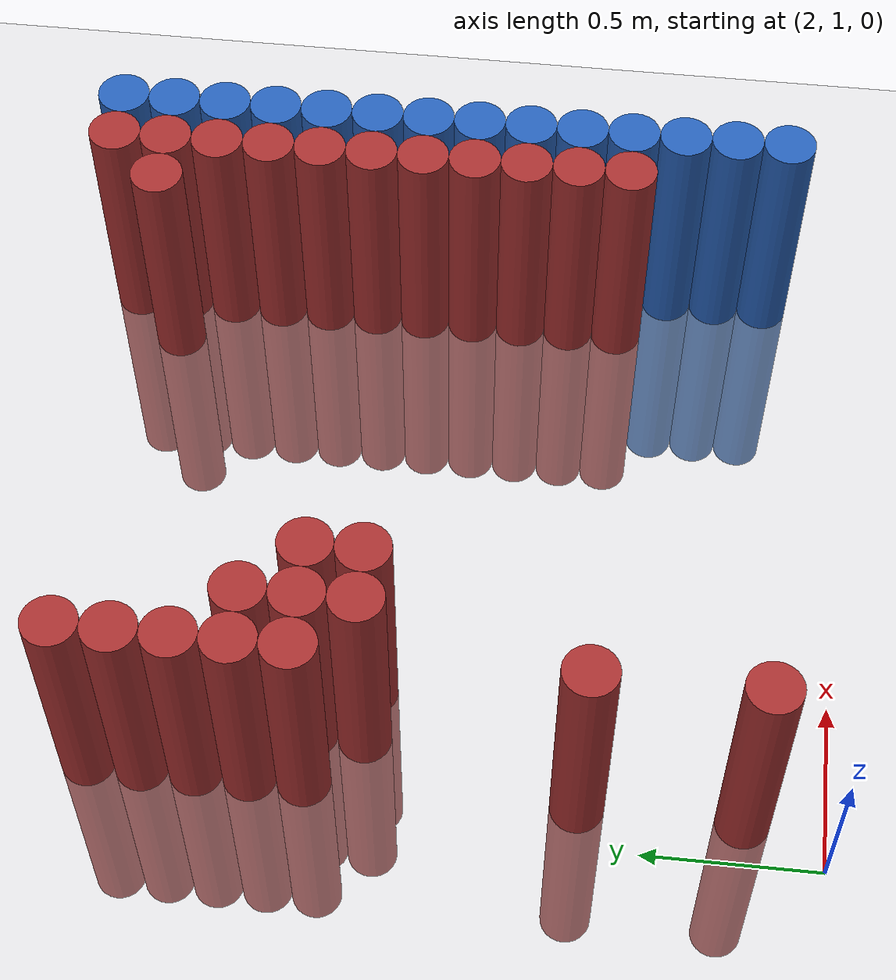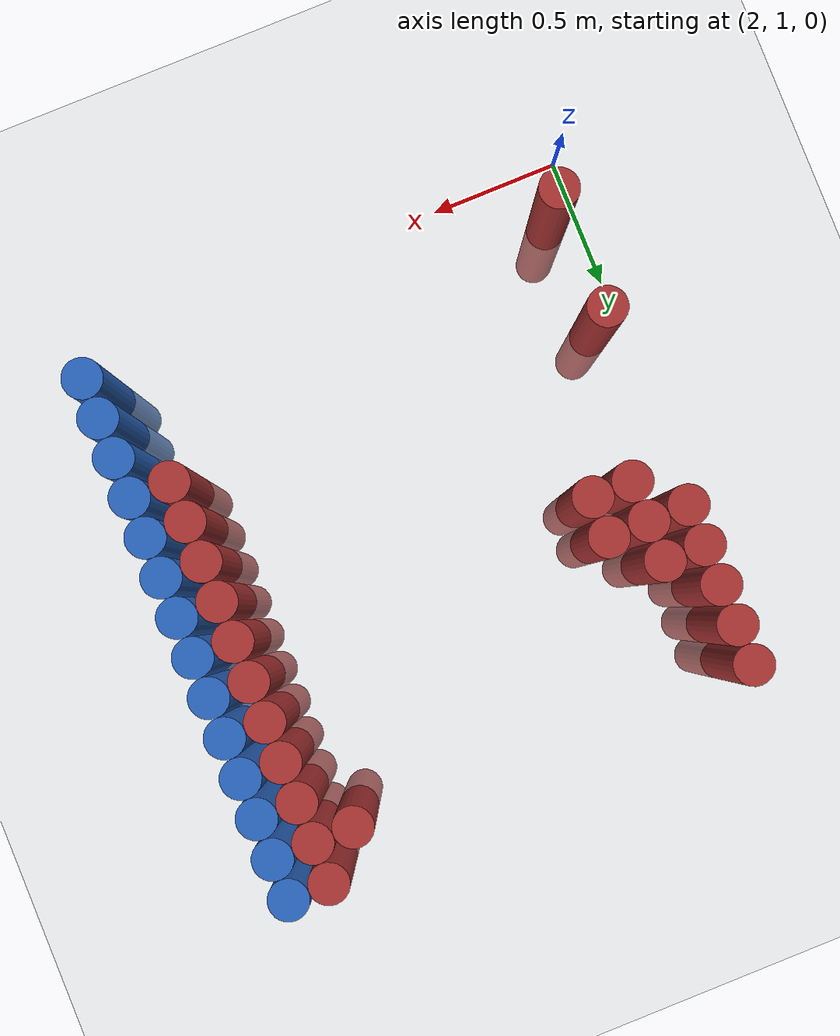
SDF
<sdf version="1.6">
 <world name="default">
  <model name="ground_plane">
   <static>1</static>
   <link name="link">
    <collision name="collision">
     <geometry><plane><normal>0 0 1</normal><size>100 100</size></plane></geometry>
     <surface><friction><ode><mu>100</mu><mu2>50</mu2></ode></friction></surface>
    </collision>
    <visual name="visual">
     <cast_shadows>0</cast_shadows>
     <geometry><plane><normal>0 0 1</normal><size>100 100</size></plane></geometry>
     <material>
      <script><uri>file://media/materials/scripts/gazebo.material</uri><name>Gazebo/Grey</name></script>
     </material>
    </visual>
   </link>
  </model>
  <model name="unit_cylinder_132">
   <static>1</static>
   <pose>3.925000 1.375000 0.000000 0.000000 0.000000 0.000000</pose>
   <link name="link">
    <inertial>
     <mass>1</mass>
     <inertia><ixx>0.145833</ixx><ixy>0</ixy><ixz>0</ixz><iyy>0.145833</iyy><iyz>0</iyz><izz>0.125</izz></inertia>
    </inertial>
    <collision name="collision">
     <geometry><cylinder><radius>0.075000</radius><length>1.5</length></cylinder></geometry>
    </collision>
    <visual name="visual">
     <geometry><cylinder><radius>0.075000</radius><length>1.5</length></cylinder></geometry>
     <material>
      <ambient>0.152000 0.379000 0.720000 1</ambient>
      <diffuse>0.152000 0.379000 0.720000 1</diffuse>
     </material>
     <material>
      <script><name>Gazebo/Grey</name><uri>file://media/materials/scripts/gazebo.material</uri></script>
     </material>
    </visual>
   </link>
  </model>
  <model name="unit_cylinder_134">
   <static>1</static>
   <pose>3.925000 1.525000 0.000000 0.000000 0.000000 0.000000</pose>
   <link name="link">
    <inertial>
     <mass>1</mass>
     <inertia><ixx>0.145833</ixx><ixy>0</ixy><ixz>0</ixz><iyy>0.145833</iyy><iyz>0</iyz><izz>0.125</izz></inertia>
    </inertial>
    <collision name="collision">
     <geometry><cylinder><radius>0.075000</radius><length>1.5</length></cylinder></geometry>
    </collision>
    <visual name="visual">
     <geometry><cylinder><radius>0.075000</radius><length>1.5</length></cylinder></geometry>
     <material>
      <ambient>0.152000 0.379000 0.720000 1</ambient>
      <diffuse>0.152000 0.379000 0.720000 1</diffuse>
     </material>
     <material>
      <script><name>Gazebo/Grey</name><uri>file://media/materials/scripts/gazebo.material</uri></script>
     </material>
    </visual>
   </link>
  </model>
  <model name="unit_cylinder_136">
   <static>1</static>
   <pose>3.925000 1.675000 0.000000 0.000000 0.000000 0.000000</pose>
   <link name="link">
    <inertial>
     <mass>1</mass>
     <inertia><ixx>0.145833</ixx><ixy>0</ixy><ixz>0</ixz><iyy>0.145833</iyy><iyz>0</iyz><izz>0.125</izz></inertia>
    </inertial>
    <collision name="collision">
     <geometry><cylinder><radius>0.075000</radius><length>1.5</length></cylinder></geometry>
    </collision>
    <visual name="visual">
     <geometry><cylinder><radius>0.075000</radius><length>1.5</length></cylinder></geometry>
     <material>
      <ambient>0.152000 0.379000 0.720000 1</ambient>
      <diffuse>0.152000 0.379000 0.720000 1</diffuse>
     </material>
     <material>
      <script><name>Gazebo/Grey</name><uri>file://media/materials/scripts/gazebo.material</uri></script>
     </material>
    </visual>
   </link>
  </model>
  <model name="unit_cylinder_138">
   <static>1</static>
   <pose>3.925000 1.825000 0.000000 0.000000 0.000000 0.000000</pose>
   <link name="link">
    <inertial>
     <mass>1</mass>
     <inertia><ixx>0.145833</ixx><ixy>0</ixy><ixz>0</ixz><iyy>0.145833</iyy><iyz>0</iyz><izz>0.125</izz></inertia>
    </inertial>
    <collision name="collision">
     <geometry><cylinder><radius>0.075000</radius><length>1.5</length></cylinder></geometry>
    </collision>
    <visual name="visual">
     <geometry><cylinder><radius>0.075000</radius><length>1.5</length></cylinder></geometry>
     <material>
      <ambient>0.152000 0.379000 0.720000 1</ambient>
      <diffuse>0.152000 0.379000 0.720000 1</diffuse>
     </material>
     <material>
      <script><name>Gazebo/Grey</name><uri>file://media/materials/scripts/gazebo.material</uri></script>
     </material>
    </visual>
   </link>
  </model>
  <model name="unit_cylinder_140">
   <static>1</static>
   <pose>3.925000 1.975000 0.000000 0.000000 0.000000 0.000000</pose>
   <link name="link">
    <inertial>
     <mass>1</mass>
     <inertia><ixx>0.145833</ixx><ixy>0</ixy><ixz>0</ixz><iyy>0.145833</iyy><iyz>0</iyz><izz>0.125</izz></inertia>
    </inertial>
    <collision name="collision">
     <geometry><cylinder><radius>0.075000</radius><length>1.5</length></cylinder></geometry>
    </collision>
    <visual name="visual">
     <geometry><cylinder><radius>0.075000</radius><length>1.5</length></cylinder></geometry>
     <material>
      <ambient>0.152000 0.379000 0.720000 1</ambient>
      <diffuse>0.152000 0.379000 0.720000 1</diffuse>
     </material>
     <material>
      <script><name>Gazebo/Grey</name><uri>file://media/materials/scripts/gazebo.material</uri></script>
     </material>
    </visual>
   </link>
  </model>
  <model name="unit_cylinder_142">
   <static>1</static>
   <pose>3.925000 2.125000 0.000000 0.000000 0.000000 0.000000</pose>
   <link name="link">
    <inertial>
     <mass>1</mass>
     <inertia><ixx>0.145833</ixx><ixy>0</ixy><ixz>0</ixz><iyy>0.145833</iyy><iyz>0</iyz><izz>0.125</izz></inertia>
    </inertial>
    <collision name="collision">
     <geometry><cylinder><radius>0.075000</radius><length>1.5</length></cylinder></geometry>
    </collision>
    <visual name="visual">
     <geometry><cylinder><radius>0.075000</radius><length>1.5</length></cylinder></geometry>
     <material>
      <ambient>0.152000 0.379000 0.720000 1</ambient>
      <diffuse>0.152000 0.379000 0.720000 1</diffuse>
     </material>
     <material>
      <script><name>Gazebo/Grey</name><uri>file://media/materials/scripts/gazebo.material</uri></script>
     </material>
    </visual>
   </link>
  </model>
  <model name="unit_cylinder_144">
   <static>1</static>
   <pose>3.925000 2.275000 0.000000 0.000000 0.000000 0.000000</pose>
   <link name="link">
    <inertial>
     <mass>1</mass>
     <inertia><ixx>0.145833</ixx><ixy>0</ixy><ixz>0</ixz><iyy>0.145833</iyy><iyz>0</iyz><izz>0.125</izz></inertia>
    </inertial>
    <collision name="collision">
     <geometry><cylinder><radius>0.075000</radius><length>1.5</length></cylinder></geometry>
    </collision>
    <visual name="visual">
     <geometry><cylinder><radius>0.075000</radius><length>1.5</length></cylinder></geometry>
     <material>
      <ambient>0.152000 0.379000 0.720000 1</ambient>
      <diffuse>0.152000 0.379000 0.720000 1</diffuse>
     </material>
     <material>
      <script><name>Gazebo/Grey</name><uri>file://media/materials/scripts/gazebo.material</uri></script>
     </material>
    </visual>
   </link>
  </model>
  <model name="unit_cylinder_146">
   <static>1</static>
   <pose>3.925000 2.425000 0.000000 0.000000 0.000000 0.000000</pose>
   <link name="link">
    <inertial>
     <mass>1</mass>
     <inertia><ixx>0.145833</ixx><ixy>0</ixy><ixz>0</ixz><iyy>0.145833</iyy><iyz>0</iyz><izz>0.125</izz></inertia>
    </inertial>
    <collision name="collision">
     <geometry><cylinder><radius>0.075000</radius><length>1.5</length></cylinder></geometry>
    </collision>
    <visual name="visual">
     <geometry><cylinder><radius>0.075000</radius><length>1.5</length></cylinder></geometry>
     <material>
      <ambient>0.152000 0.379000 0.720000 1</ambient>
      <diffuse>0.152000 0.379000 0.720000 1</diffuse>
     </material>
     <material>
      <script><name>Gazebo/Grey</name><uri>file://media/materials/scripts/gazebo.material</uri></script>
     </material>
    </visual>
   </link>
  </model>
  <model name="unit_cylinder_148">
   <static>1</static>
   <pose>3.925000 2.575000 0.000000 0.000000 0.000000 0.000000</pose>
   <link name="link">
    <inertial>
     <mass>1</mass>
     <inertia><ixx>0.145833</ixx><ixy>0</ixy><ixz>0</ixz><iyy>0.145833</iyy><iyz>0</iyz><izz>0.125</izz></inertia>
    </inertial>
    <collision name="collision">
     <geometry><cylinder><radius>0.075000</radius><length>1.5</length></cylinder></geometry>
    </collision>
    <visual name="visual">
     <geometry><cylinder><radius>0.075000</radius><length>1.5</length></cylinder></geometry>
     <material>
      <ambient>0.152000 0.379000 0.720000 1</ambient>
      <diffuse>0.152000 0.379000 0.720000 1</diffuse>
     </material>
     <material>
      <script><name>Gazebo/Grey</name><uri>file://media/materials/scripts/gazebo.material</uri></script>
     </material>
    </visual>
   </link>
  </model>
  <model name="unit_cylinder_150">
   <static>1</static>
   <pose>3.925000 2.725000 0.000000 0.000000 0.000000 0.000000</pose>
   <link name="link">
    <inertial>
     <mass>1</mass>
     <inertia><ixx>0.145833</ixx><ixy>0</ixy><ixz>0</ixz><iyy>0.145833</iyy><iyz>0</iyz><izz>0.125</izz></inertia>
    </inertial>
    <collision name="collision">
     <geometry><cylinder><radius>0.075000</radius><length>1.5</length></cylinder></geometry>
    </collision>
    <visual name="visual">
     <geometry><cylinder><radius>0.075000</radius><length>1.5</length></cylinder></geometry>
     <material>
      <ambient>0.152000 0.379000 0.720000 1</ambient>
      <diffuse>0.152000 0.379000 0.720000 1</diffuse>
     </material>
     <material>
      <script><name>Gazebo/Grey</name><uri>file://media/materials/scripts/gazebo.material</uri></script>
     </material>
    </visual>
   </link>
  </model>
  <model name="unit_cylinder_152">
   <static>1</static>
   <pose>3.925000 2.875000 0.000000 0.000000 0.000000 0.000000</pose>
   <link name="link">
    <inertial>
     <mass>1</mass>
     <inertia><ixx>0.145833</ixx><ixy>0</ixy><ixz>0</ixz><iyy>0.145833</iyy><iyz>0</iyz><izz>0.125</izz></inertia>
    </inertial>
    <collision name="collision">
     <geometry><cylinder><radius>0.075000</radius><length>1.5</length></cylinder></geometry>
    </collision>
    <visual name="visual">
     <geometry><cylinder><radius>0.075000</radius><length>1.5</length></cylinder></geometry>
     <material>
      <ambient>0.152000 0.379000 0.720000 1</ambient>
      <diffuse>0.152000 0.379000 0.720000 1</diffuse>
     </material>
     <material>
      <script><name>Gazebo/Grey</name><uri>file://media/materials/scripts/gazebo.material</uri></script>
     </material>
    </visual>
   </link>
  </model>
  <model name="unit_cylinder_154">
   <static>1</static>
   <pose>3.925000 3.025000 0.000000 0.000000 0.000000 0.000000</pose>
   <link name="link">
    <inertial>
     <mass>1</mass>
     <inertia><ixx>0.145833</ixx><ixy>0</ixy><ixz>0</ixz><iyy>0.145833</iyy><iyz>0</iyz><izz>0.125</izz></inertia>
    </inertial>
    <collision name="collision">
     <geometry><cylinder><radius>0.075000</radius><length>1.5</length></cylinder></geometry>
    </collision>
    <visual name="visual">
     <geometry><cylinder><radius>0.075000</radius><length>1.5</length></cylinder></geometry>
     <material>
      <ambient>0.152000 0.379000 0.720000 1</ambient>
      <diffuse>0.152000 0.379000 0.720000 1</diffuse>
     </material>
     <material>
      <script><name>Gazebo/Grey</name><uri>file://media/materials/scripts/gazebo.material</uri></script>
     </material>
    </visual>
   </link>
  </model>
  <model name="unit_cylinder_156">
   <static>1</static>
   <pose>3.925000 3.175000 0.000000 0.000000 0.000000 0.000000</pose>
   <link name="link">
    <inertial>
     <mass>1</mass>
     <inertia><ixx>0.145833</ixx><ixy>0</ixy><ixz>0</ixz><iyy>0.145833</iyy><iyz>0</iyz><izz>0.125</izz></inertia>
    </inertial>
    <collision name="collision">
     <geometry><cylinder><radius>0.075000</radius><length>1.5</length></cylinder></geometry>
    </collision>
    <visual name="visual">
     <geometry><cylinder><radius>0.075000</radius><length>1.5</length></cylinder></geometry>
     <material>
      <ambient>0.152000 0.379000 0.720000 1</ambient>
      <diffuse>0.152000 0.379000 0.720000 1</diffuse>
     </material>
     <material>
      <script><name>Gazebo/Grey</name><uri>file://media/materials/scripts/gazebo.material</uri></script>
     </material>
    </visual>
   </link>
  </model>
  <model name="unit_cylinder_551">
   <static>1</static>
   <pose>2.125000 1.225000 0.000000 0.000000 0.000000 0.000000</pose>
   <link name="link">
    <inertial>
     <mass>1</mass>
     <inertia><ixx>0.145833</ixx><ixy>0</ixy><ixz>0</ixz><iyy>0.145833</iyy><iyz>0</iyz><izz>0.125</izz></inertia>
    </inertial>
    <collision name="collision">
     <geometry><cylinder><radius>0.075000</radius><length>1.5</length></cylinder></geometry>
    </collision>
    <visual name="visual">
     <geometry><cylinder><radius>0.075000</radius><length>1.5</length></cylinder></geometry>
     <material>
      <ambient>0.648000 0.192000 0.192000 1</ambient>
      <diffuse>0.648000 0.192000 0.192000 1</diffuse>
     </material>
     <material>
      <script><name>Gazebo/Grey</name><uri>file://media/materials/scripts/gazebo.material</uri></script>
     </material>
    </visual>
   </link>
  </model>
  <model name="unit_cylinder_552">
   <static>1</static>
   <pose>2.125000 1.675000 0.000000 0.000000 0.000000 0.000000</pose>
   <link name="link">
    <inertial>
     <mass>1</mass>
     <inertia><ixx>0.145833</ixx><ixy>0</ixy><ixz>0</ixz><iyy>0.145833</iyy><iyz>0</iyz><izz>0.125</izz></inertia>
    </inertial>
    <collision name="collision">
     <geometry><cylinder><radius>0.075000</radius><length>1.5</length></cylinder></geometry>
    </collision>
    <visual name="visual">
     <geometry><cylinder><radius>0.075000</radius><length>1.5</length></cylinder></geometry>
     <material>
      <ambient>0.648000 0.192000 0.192000 1</ambient>
      <diffuse>0.648000 0.192000 0.192000 1</diffuse>
     </material>
     <material>
      <script><name>Gazebo/Grey</name><uri>file://media/materials/scripts/gazebo.material</uri></script>
     </material>
    </visual>
   </link>
  </model>
  <model name="unit_cylinder_553">
   <static>1</static>
   <pose>2.125000 2.425000 0.000000 0.000000 0.000000 0.000000</pose>
   <link name="link">
    <inertial>
     <mass>1</mass>
     <inertia><ixx>0.145833</ixx><ixy>0</ixy><ixz>0</ixz><iyy>0.145833</iyy><iyz>0</iyz><izz>0.125</izz></inertia>
    </inertial>
    <collision name="collision">
     <geometry><cylinder><radius>0.075000</radius><length>1.5</length></cylinder></geometry>
    </collision>
    <visual name="visual">
     <geometry><cylinder><radius>0.075000</radius><length>1.5</length></cylinder></geometry>
     <material>
      <ambient>0.648000 0.192000 0.192000 1</ambient>
      <diffuse>0.648000 0.192000 0.192000 1</diffuse>
     </material>
     <material>
      <script><name>Gazebo/Grey</name><uri>file://media/materials/scripts/gazebo.material</uri></script>
     </material>
    </visual>
   </link>
  </model>
  <model name="unit_cylinder_554">
   <static>1</static>
   <pose>2.125000 2.575000 0.000000 0.000000 0.000000 0.000000</pose>
   <link name="link">
    <inertial>
     <mass>1</mass>
     <inertia><ixx>0.145833</ixx><ixy>0</ixy><ixz>0</ixz><iyy>0.145833</iyy><iyz>0</iyz><izz>0.125</izz></inertia>
    </inertial>
    <collision name="collision">
     <geometry><cylinder><radius>0.075000</radius><length>1.5</length></cylinder></geometry>
    </collision>
    <visual name="visual">
     <geometry><cylinder><radius>0.075000</radius><length>1.5</length></cylinder></geometry>
     <material>
      <ambient>0.648000 0.192000 0.192000 1</ambient>
      <diffuse>0.648000 0.192000 0.192000 1</diffuse>
     </material>
     <material>
      <script><name>Gazebo/Grey</name><uri>file://media/materials/scripts/gazebo.material</uri></script>
     </material>
    </visual>
   </link>
  </model>
  <model name="unit_cylinder_555">
   <static>1</static>
   <pose>2.125000 2.725000 0.000000 0.000000 0.000000 0.000000</pose>
   <link name="link">
    <inertial>
     <mass>1</mass>
     <inertia><ixx>0.145833</ixx><ixy>0</ixy><ixz>0</ixz><iyy>0.145833</iyy><iyz>0</iyz><izz>0.125</izz></inertia>
    </inertial>
    <collision name="collision">
     <geometry><cylinder><radius>0.075000</radius><length>1.5</length></cylinder></geometry>
    </collision>
    <visual name="visual">
     <geometry><cylinder><radius>0.075000</radius><length>1.5</length></cylinder></geometry>
     <material>
      <ambient>0.648000 0.192000 0.192000 1</ambient>
      <diffuse>0.648000 0.192000 0.192000 1</diffuse>
     </material>
     <material>
      <script><name>Gazebo/Grey</name><uri>file://media/materials/scripts/gazebo.material</uri></script>
     </material>
    </visual>
   </link>
  </model>
  <model name="unit_cylinder_556">
   <static>1</static>
   <pose>2.125000 2.875000 0.000000 0.000000 0.000000 0.000000</pose>
   <link name="link">
    <inertial>
     <mass>1</mass>
     <inertia><ixx>0.145833</ixx><ixy>0</ixy><ixz>0</ixz><iyy>0.145833</iyy><iyz>0</iyz><izz>0.125</izz></inertia>
    </inertial>
    <collision name="collision">
     <geometry><cylinder><radius>0.075000</radius><length>1.5</length></cylinder></geometry>
    </collision>
    <visual name="visual">
     <geometry><cylinder><radius>0.075000</radius><length>1.5</length></cylinder></geometry>
     <material>
      <ambient>0.648000 0.192000 0.192000 1</ambient>
      <diffuse>0.648000 0.192000 0.192000 1</diffuse>
     </material>
     <material>
      <script><name>Gazebo/Grey</name><uri>file://media/materials/scripts/gazebo.material</uri></script>
     </material>
    </visual>
   </link>
  </model>
  <model name="unit_cylinder_557">
   <static>1</static>
   <pose>2.125000 3.025000 0.000000 0.000000 0.000000 0.000000</pose>
   <link name="link">
    <inertial>
     <mass>1</mass>
     <inertia><ixx>0.145833</ixx><ixy>0</ixy><ixz>0</ixz><iyy>0.145833</iyy><iyz>0</iyz><izz>0.125</izz></inertia>
    </inertial>
    <collision name="collision">
     <geometry><cylinder><radius>0.075000</radius><length>1.5</length></cylinder></geometry>
    </collision>
    <visual name="visual">
     <geometry><cylinder><radius>0.075000</radius><length>1.5</length></cylinder></geometry>
     <material>
      <ambient>0.648000 0.192000 0.192000 1</ambient>
      <diffuse>0.648000 0.192000 0.192000 1</diffuse>
     </material>
     <material>
      <script><name>Gazebo/Grey</name><uri>file://media/materials/scripts/gazebo.material</uri></script>
     </material>
    </visual>
   </link>
  </model>
  <model name="unit_cylinder_561">
   <static>1</static>
   <pose>2.275000 2.275000 0.000000 0.000000 0.000000 0.000000</pose>
   <link name="link">
    <inertial>
     <mass>1</mass>
     <inertia><ixx>0.145833</ixx><ixy>0</ixy><ixz>0</ixz><iyy>0.145833</iyy><iyz>0</iyz><izz>0.125</izz></inertia>
    </inertial>
    <collision name="collision">
     <geometry><cylinder><radius>0.075000</radius><length>1.5</length></cylinder></geometry>
    </collision>
    <visual name="visual">
     <geometry><cylinder><radius>0.075000</radius><length>1.5</length></cylinder></geometry>
     <material>
      <ambient>0.648000 0.192000 0.192000 1</ambient>
      <diffuse>0.648000 0.192000 0.192000 1</diffuse>
     </material>
     <material>
      <script><name>Gazebo/Grey</name><uri>file://media/materials/scripts/gazebo.material</uri></script>
     </material>
    </visual>
   </link>
  </model>
  <model name="unit_cylinder_562">
   <static>1</static>
   <pose>2.275000 2.425000 0.000000 0.000000 0.000000 0.000000</pose>
   <link name="link">
    <inertial>
     <mass>1</mass>
     <inertia><ixx>0.145833</ixx><ixy>0</ixy><ixz>0</ixz><iyy>0.145833</iyy><iyz>0</iyz><izz>0.125</izz></inertia>
    </inertial>
    <collision name="collision">
     <geometry><cylinder><radius>0.075000</radius><length>1.5</length></cylinder></geometry>
    </collision>
    <visual name="visual">
     <geometry><cylinder><radius>0.075000</radius><length>1.5</length></cylinder></geometry>
     <material>
      <ambient>0.648000 0.192000 0.192000 1</ambient>
      <diffuse>0.648000 0.192000 0.192000 1</diffuse>
     </material>
     <material>
      <script><name>Gazebo/Grey</name><uri>file://media/materials/scripts/gazebo.material</uri></script>
     </material>
    </visual>
   </link>
  </model>
  <model name="unit_cylinder_563">
   <static>1</static>
   <pose>2.275000 2.575000 0.000000 0.000000 0.000000 0.000000</pose>
   <link name="link">
    <inertial>
     <mass>1</mass>
     <inertia><ixx>0.145833</ixx><ixy>0</ixy><ixz>0</ixz><iyy>0.145833</iyy><iyz>0</iyz><izz>0.125</izz></inertia>
    </inertial>
    <collision name="collision">
     <geometry><cylinder><radius>0.075000</radius><length>1.5</length></cylinder></geometry>
    </collision>
    <visual name="visual">
     <geometry><cylinder><radius>0.075000</radius><length>1.5</length></cylinder></geometry>
     <material>
      <ambient>0.648000 0.192000 0.192000 1</ambient>
      <diffuse>0.648000 0.192000 0.192000 1</diffuse>
     </material>
     <material>
      <script><name>Gazebo/Grey</name><uri>file://media/materials/scripts/gazebo.material</uri></script>
     </material>
    </visual>
   </link>
  </model>
  <model name="unit_cylinder_564">
   <static>1</static>
   <pose>2.425000 2.275000 0.000000 0.000000 0.000000 0.000000</pose>
   <link name="link">
    <inertial>
     <mass>1</mass>
     <inertia><ixx>0.145833</ixx><ixy>0</ixy><ixz>0</ixz><iyy>0.145833</iyy><iyz>0</iyz><izz>0.125</izz></inertia>
    </inertial>
    <collision name="collision">
     <geometry><cylinder><radius>0.075000</radius><length>1.5</length></cylinder></geometry>
    </collision>
    <visual name="visual">
     <geometry><cylinder><radius>0.075000</radius><length>1.5</length></cylinder></geometry>
     <material>
      <ambient>0.648000 0.192000 0.192000 1</ambient>
      <diffuse>0.648000 0.192000 0.192000 1</diffuse>
     </material>
     <material>
      <script><name>Gazebo/Grey</name><uri>file://media/materials/scripts/gazebo.material</uri></script>
     </material>
    </visual>
   </link>
  </model>
  <model name="unit_cylinder_565">
   <static>1</static>
   <pose>2.425000 2.425000 0.000000 0.000000 0.000000 0.000000</pose>
   <link name="link">
    <inertial>
     <mass>1</mass>
     <inertia><ixx>0.145833</ixx><ixy>0</ixy><ixz>0</ixz><iyy>0.145833</iyy><iyz>0</iyz><izz>0.125</izz></inertia>
    </inertial>
    <collision name="collision">
     <geometry><cylinder><radius>0.075000</radius><length>1.5</length></cylinder></geometry>
    </collision>
    <visual name="visual">
     <geometry><cylinder><radius>0.075000</radius><length>1.5</length></cylinder></geometry>
     <material>
      <ambient>0.648000 0.192000 0.192000 1</ambient>
      <diffuse>0.648000 0.192000 0.192000 1</diffuse>
     </material>
     <material>
      <script><name>Gazebo/Grey</name><uri>file://media/materials/scripts/gazebo.material</uri></script>
     </material>
    </visual>
   </link>
  </model>
  <model name="unit_cylinder_577">
   <static>1</static>
   <pose>3.625000 3.025000 0.000000 0.000000 0.000000 0.000000</pose>
   <link name="link">
    <inertial>
     <mass>1</mass>
     <inertia><ixx>0.145833</ixx><ixy>0</ixy><ixz>0</ixz><iyy>0.145833</iyy><iyz>0</iyz><izz>0.125</izz></inertia>
    </inertial>
    <collision name="collision">
     <geometry><cylinder><radius>0.075000</radius><length>1.5</length></cylinder></geometry>
    </collision>
    <visual name="visual">
     <geometry><cylinder><radius>0.075000</radius><length>1.5</length></cylinder></geometry>
     <material>
      <ambient>0.648000 0.192000 0.192000 1</ambient>
      <diffuse>0.648000 0.192000 0.192000 1</diffuse>
     </material>
     <material>
      <script><name>Gazebo/Grey</name><uri>file://media/materials/scripts/gazebo.material</uri></script>
     </material>
    </visual>
   </link>
  </model>
  <model name="unit_cylinder_588">
   <static>1</static>
   <pose>3.775000 1.675000 0.000000 0.000000 0.000000 0.000000</pose>
   <link name="link">
    <inertial>
     <mass>1</mass>
     <inertia><ixx>0.145833</ixx><ixy>0</ixy><ixz>0</ixz><iyy>0.145833</iyy><iyz>0</iyz><izz>0.125</izz></inertia>
    </inertial>
    <collision name="collision">
     <geometry><cylinder><radius>0.075000</radius><length>1.5</length></cylinder></geometry>
    </collision>
    <visual name="visual">
     <geometry><cylinder><radius>0.075000</radius><length>1.5</length></cylinder></geometry>
     <material>
      <ambient>0.648000 0.192000 0.192000 1</ambient>
      <diffuse>0.648000 0.192000 0.192000 1</diffuse>
     </material>
     <material>
      <script><name>Gazebo/Grey</name><uri>file://media/materials/scripts/gazebo.material</uri></script>
     </material>
    </visual>
   </link>
  </model>
  <model name="unit_cylinder_589">
   <static>1</static>
   <pose>3.775000 1.825000 0.000000 0.000000 0.000000 0.000000</pose>
   <link name="link">
    <inertial>
     <mass>1</mass>
     <inertia><ixx>0.145833</ixx><ixy>0</ixy><ixz>0</ixz><iyy>0.145833</iyy><iyz>0</iyz><izz>0.125</izz></inertia>
    </inertial>
    <collision name="collision">
     <geometry><cylinder><radius>0.075000</radius><length>1.5</length></cylinder></geometry>
    </collision>
    <visual name="visual">
     <geometry><cylinder><radius>0.075000</radius><length>1.5</length></cylinder></geometry>
     <material>
      <ambient>0.648000 0.192000 0.192000 1</ambient>
      <diffuse>0.648000 0.192000 0.192000 1</diffuse>
     </material>
     <material>
      <script><name>Gazebo/Grey</name><uri>file://media/materials/scripts/gazebo.material</uri></script>
     </material>
    </visual>
   </link>
  </model>
  <model name="unit_cylinder_590">
   <static>1</static>
   <pose>3.775000 1.975000 0.000000 0.000000 0.000000 0.000000</pose>
   <link name="link">
    <inertial>
     <mass>1</mass>
     <inertia><ixx>0.145833</ixx><ixy>0</ixy><ixz>0</ixz><iyy>0.145833</iyy><iyz>0</iyz><izz>0.125</izz></inertia>
    </inertial>
    <collision name="collision">
     <geometry><cylinder><radius>0.075000</radius><length>1.5</length></cylinder></geometry>
    </collision>
    <visual name="visual">
     <geometry><cylinder><radius>0.075000</radius><length>1.5</length></cylinder></geometry>
     <material>
      <ambient>0.648000 0.192000 0.192000 1</ambient>
      <diffuse>0.648000 0.192000 0.192000 1</diffuse>
     </material>
     <material>
      <script><name>Gazebo/Grey</name><uri>file://media/materials/scripts/gazebo.material</uri></script>
     </material>
    </visual>
   </link>
  </model>
  <model name="unit_cylinder_591">
   <static>1</static>
   <pose>3.775000 2.125000 0.000000 0.000000 0.000000 0.000000</pose>
   <link name="link">
    <inertial>
     <mass>1</mass>
     <inertia><ixx>0.145833</ixx><ixy>0</ixy><ixz>0</ixz><iyy>0.145833</iyy><iyz>0</iyz><izz>0.125</izz></inertia>
    </inertial>
    <collision name="collision">
     <geometry><cylinder><radius>0.075000</radius><length>1.5</length></cylinder></geometry>
    </collision>
    <visual name="visual">
     <geometry><cylinder><radius>0.075000</radius><length>1.5</length></cylinder></geometry>
     <material>
      <ambient>0.648000 0.192000 0.192000 1</ambient>
      <diffuse>0.648000 0.192000 0.192000 1</diffuse>
     </material>
     <material>
      <script><name>Gazebo/Grey</name><uri>file://media/materials/scripts/gazebo.material</uri></script>
     </material>
    </visual>
   </link>
  </model>
  <model name="unit_cylinder_592">
   <static>1</static>
   <pose>3.775000 2.275000 0.000000 0.000000 0.000000 0.000000</pose>
   <link name="link">
    <inertial>
     <mass>1</mass>
     <inertia><ixx>0.145833</ixx><ixy>0</ixy><ixz>0</ixz><iyy>0.145833</iyy><iyz>0</iyz><izz>0.125</izz></inertia>
    </inertial>
    <collision name="collision">
     <geometry><cylinder><radius>0.075000</radius><length>1.5</length></cylinder></geometry>
    </collision>
    <visual name="visual">
     <geometry><cylinder><radius>0.075000</radius><length>1.5</length></cylinder></geometry>
     <material>
      <ambient>0.648000 0.192000 0.192000 1</ambient>
      <diffuse>0.648000 0.192000 0.192000 1</diffuse>
     </material>
     <material>
      <script><name>Gazebo/Grey</name><uri>file://media/materials/scripts/gazebo.material</uri></script>
     </material>
    </visual>
   </link>
  </model>
  <model name="unit_cylinder_593">
   <static>1</static>
   <pose>3.775000 2.425000 0.000000 0.000000 0.000000 0.000000</pose>
   <link name="link">
    <inertial>
     <mass>1</mass>
     <inertia><ixx>0.145833</ixx><ixy>0</ixy><ixz>0</ixz><iyy>0.145833</iyy><iyz>0</iyz><izz>0.125</izz></inertia>
    </inertial>
    <collision name="collision">
     <geometry><cylinder><radius>0.075000</radius><length>1.5</length></cylinder></geometry>
    </collision>
    <visual name="visual">
     <geometry><cylinder><radius>0.075000</radius><length>1.5</length></cylinder></geometry>
     <material>
      <ambient>0.648000 0.192000 0.192000 1</ambient>
      <diffuse>0.648000 0.192000 0.192000 1</diffuse>
     </material>
     <material>
      <script><name>Gazebo/Grey</name><uri>file://media/materials/scripts/gazebo.material</uri></script>
     </material>
    </visual>
   </link>
  </model>
  <model name="unit_cylinder_594">
   <static>1</static>
   <pose>3.775000 2.575000 0.000000 0.000000 0.000000 0.000000</pose>
   <link name="link">
    <inertial>
     <mass>1</mass>
     <inertia><ixx>0.145833</ixx><ixy>0</ixy><ixz>0</ixz><iyy>0.145833</iyy><iyz>0</iyz><izz>0.125</izz></inertia>
    </inertial>
    <collision name="collision">
     <geometry><cylinder><radius>0.075000</radius><length>1.5</length></cylinder></geometry>
    </collision>
    <visual name="visual">
     <geometry><cylinder><radius>0.075000</radius><length>1.5</length></cylinder></geometry>
     <material>
      <ambient>0.648000 0.192000 0.192000 1</ambient>
      <diffuse>0.648000 0.192000 0.192000 1</diffuse>
     </material>
     <material>
      <script><name>Gazebo/Grey</name><uri>file://media/materials/scripts/gazebo.material</uri></script>
     </material>
    </visual>
   </link>
  </model>
  <model name="unit_cylinder_595">
   <static>1</static>
   <pose>3.775000 2.725000 0.000000 0.000000 0.000000 0.000000</pose>
   <link name="link">
    <inertial>
     <mass>1</mass>
     <inertia><ixx>0.145833</ixx><ixy>0</ixy><ixz>0</ixz><iyy>0.145833</iyy><iyz>0</iyz><izz>0.125</izz></inertia>
    </inertial>
    <collision name="collision">
     <geometry><cylinder><radius>0.075000</radius><length>1.5</length></cylinder></geometry>
    </collision>
    <visual name="visual">
     <geometry><cylinder><radius>0.075000</radius><length>1.5</length></cylinder></geometry>
     <material>
      <ambient>0.648000 0.192000 0.192000 1</ambient>
      <diffuse>0.648000 0.192000 0.192000 1</diffuse>
     </material>
     <material>
      <script><name>Gazebo/Grey</name><uri>file://media/materials/scripts/gazebo.material</uri></script>
     </material>
    </visual>
   </link>
  </model>
  <model name="unit_cylinder_596">
   <static>1</static>
   <pose>3.775000 2.875000 0.000000 0.000000 0.000000 0.000000</pose>
   <link name="link">
    <inertial>
     <mass>1</mass>
     <inertia><ixx>0.145833</ixx><ixy>0</ixy><ixz>0</ixz><iyy>0.145833</iyy><iyz>0</iyz><izz>0.125</izz></inertia>
    </inertial>
    <collision name="collision">
     <geometry><cylinder><radius>0.075000</radius><length>1.5</length></cylinder></geometry>
    </collision>
    <visual name="visual">
     <geometry><cylinder><radius>0.075000</radius><length>1.5</length></cylinder></geometry>
     <material>
      <ambient>0.648000 0.192000 0.192000 1</ambient>
      <diffuse>0.648000 0.192000 0.192000 1</diffuse>
     </material>
     <material>
      <script><name>Gazebo/Grey</name><uri>file://media/materials/scripts/gazebo.material</uri></script>
     </material>
    </visual>
   </link>
  </model>
  <model name="unit_cylinder_597">
   <static>1</static>
   <pose>3.775000 3.025000 0.000000 0.000000 0.000000 0.000000</pose>
   <link name="link">
    <inertial>
     <mass>1</mass>
     <inertia><ixx>0.145833</ixx><ixy>0</ixy><ixz>0</ixz><iyy>0.145833</iyy><iyz>0</iyz><izz>0.125</izz></inertia>
    </inertial>
    <collision name="collision">
     <geometry><cylinder><radius>0.075000</radius><length>1.5</length></cylinder></geometry>
    </collision>
    <visual name="visual">
     <geometry><cylinder><radius>0.075000</radius><length>1.5</length></cylinder></geometry>
     <material>
      <ambient>0.648000 0.192000 0.192000 1</ambient>
      <diffuse>0.648000 0.192000 0.192000 1</diffuse>
     </material>
     <material>
      <script><name>Gazebo/Grey</name><uri>file://media/materials/scripts/gazebo.material</uri></script>
     </material>
    </visual>
   </link>
  </model>
  <model name="unit_cylinder_598">
   <static>1</static>
   <pose>3.775000 3.175000 0.000000 0.000000 0.000000 0.000000</pose>
   <link name="link">
    <inertial>
     <mass>1</mass>
     <inertia><ixx>0.145833</ixx><ixy>0</ixy><ixz>0</ixz><iyy>0.145833</iyy><iyz>0</iyz><izz>0.125</izz></inertia>
    </inertial>
    <collision name="collision">
     <geometry><cylinder><radius>0.075000</radius><length>1.5</length></cylinder></geometry>
    </collision>
    <visual name="visual">
     <geometry><cylinder><radius>0.075000</radius><length>1.5</length></cylinder></geometry>
     <material>
      <ambient>0.648000 0.192000 0.192000 1</ambient>
      <diffuse>0.648000 0.192000 0.192000 1</diffuse>
     </material>
     <material>
      <script><name>Gazebo/Grey</name><uri>file://media/materials/scripts/gazebo.material</uri></script>
     </material>
    </visual>
   </link>
  </model>
  <model name="unit_cylinder_626">
   <static>1</static>
   <pose>3.925000 1.225000 0.000000 0.000000 0.000000 0.000000</pose>
   <link name="link">
    <inertial>
     <mass>1</mass>
     <inertia><ixx>0.145833</ixx><ixy>0</ixy><ixz>0</ixz><iyy>0.145833</iyy><iyz>0</iyz><izz>0.125</izz></inertia>
    </inertial>
    <collision name="collision">
     <geometry><cylinder><radius>0.075000</radius><length>1.5</length></cylinder></geometry>
    </collision>
    <visual name="visual">
     <geometry><cylinder><radius>0.075000</radius><length>1.5</length></cylinder></geometry>
     <material>
      <ambient>0.152000 0.379000 0.720000 1</ambient>
      <diffuse>0.152000 0.379000 0.720000 1</diffuse>
     </material>
     <material>
      <script><name>Gazebo/Grey</name><uri>file://media/materials/scripts/gazebo.material</uri></script>
     </material>
    </visual>
   </link>
  </model>
  <model name="unit_cylinder_627">
   <static>1</static>
   <pose>3.925000 1.375000 0.000000 0.000000 0.000000 0.000000</pose>
   <link name="link">
    <inertial>
     <mass>1</mass>
     <inertia><ixx>0.145833</ixx><ixy>0</ixy><ixz>0</ixz><iyy>0.145833</iyy><iyz>0</iyz><izz>0.125</izz></inertia>
    </inertial>
    <collision name="collision">
     <geometry><cylinder><radius>0.075000</radius><length>1.5</length></cylinder></geometry>
    </collision>
    <visual name="visual">
     <geometry><cylinder><radius>0.075000</radius><length>1.5</length></cylinder></geometry>
     <material>
      <ambient>0.152000 0.379000 0.720000 1</ambient>
      <diffuse>0.152000 0.379000 0.720000 1</diffuse>
     </material>
     <material>
      <script><name>Gazebo/Grey</name><uri>file://media/materials/scripts/gazebo.material</uri></script>
     </material>
    </visual>
   </link>
  </model>
  <model name="unit_cylinder_628">
   <static>1</static>
   <pose>3.925000 1.525000 0.000000 0.000000 0.000000 0.000000</pose>
   <link name="link">
    <inertial>
     <mass>1</mass>
     <inertia><ixx>0.145833</ixx><ixy>0</ixy><ixz>0</ixz><iyy>0.145833</iyy><iyz>0</iyz><izz>0.125</izz></inertia>
    </inertial>
    <collision name="collision">
     <geometry><cylinder><radius>0.075000</radius><length>1.5</length></cylinder></geometry>
    </collision>
    <visual name="visual">
     <geometry><cylinder><radius>0.075000</radius><length>1.5</length></cylinder></geometry>
     <material>
      <ambient>0.152000 0.379000 0.720000 1</ambient>
      <diffuse>0.152000 0.379000 0.720000 1</diffuse>
     </material>
     <material>
      <script><name>Gazebo/Grey</name><uri>file://media/materials/scripts/gazebo.material</uri></script>
     </material>
    </visual>
   </link>
  </model>
  <model name="unit_cylinder_629">
   <static>1</static>
   <pose>3.925000 1.675000 0.000000 0.000000 0.000000 0.000000</pose>
   <link name="link">
    <inertial>
     <mass>1</mass>
     <inertia><ixx>0.145833</ixx><ixy>0</ixy><ixz>0</ixz><iyy>0.145833</iyy><iyz>0</iyz><izz>0.125</izz></inertia>
    </inertial>
    <collision name="collision">
     <geometry><cylinder><radius>0.075000</radius><length>1.5</length></cylinder></geometry>
    </collision>
    <visual name="visual">
     <geometry><cylinder><radius>0.075000</radius><length>1.5</length></cylinder></geometry>
     <material>
      <ambient>0.152000 0.379000 0.720000 1</ambient>
      <diffuse>0.152000 0.379000 0.720000 1</diffuse>
     </material>
     <material>
      <script><name>Gazebo/Grey</name><uri>file://media/materials/scripts/gazebo.material</uri></script>
     </material>
    </visual>
   </link>
  </model>
  <model name="unit_cylinder_630">
   <static>1</static>
   <pose>3.925000 1.825000 0.000000 0.000000 0.000000 0.000000</pose>
   <link name="link">
    <inertial>
     <mass>1</mass>
     <inertia><ixx>0.145833</ixx><ixy>0</ixy><ixz>0</ixz><iyy>0.145833</iyy><iyz>0</iyz><izz>0.125</izz></inertia>
    </inertial>
    <collision name="collision">
     <geometry><cylinder><radius>0.075000</radius><length>1.5</length></cylinder></geometry>
    </collision>
    <visual name="visual">
     <geometry><cylinder><radius>0.075000</radius><length>1.5</length></cylinder></geometry>
     <material>
      <ambient>0.152000 0.379000 0.720000 1</ambient>
      <diffuse>0.152000 0.379000 0.720000 1</diffuse>
     </material>
     <material>
      <script><name>Gazebo/Grey</name><uri>file://media/materials/scripts/gazebo.material</uri></script>
     </material>
    </visual>
   </link>
  </model>
  <model name="unit_cylinder_631">
   <static>1</static>
   <pose>3.925000 1.975000 0.000000 0.000000 0.000000 0.000000</pose>
   <link name="link">
    <inertial>
     <mass>1</mass>
     <inertia><ixx>0.145833</ixx><ixy>0</ixy><ixz>0</ixz><iyy>0.145833</iyy><iyz>0</iyz><izz>0.125</izz></inertia>
    </inertial>
    <collision name="collision">
     <geometry><cylinder><radius>0.075000</radius><length>1.5</length></cylinder></geometry>
    </collision>
    <visual name="visual">
     <geometry><cylinder><radius>0.075000</radius><length>1.5</length></cylinder></geometry>
     <material>
      <ambient>0.152000 0.379000 0.720000 1</ambient>
      <diffuse>0.152000 0.379000 0.720000 1</diffuse>
     </material>
     <material>
      <script><name>Gazebo/Grey</name><uri>file://media/materials/scripts/gazebo.material</uri></script>
     </material>
    </visual>
   </link>
  </model>
  <model name="unit_cylinder_632">
   <static>1</static>
   <pose>3.925000 2.125000 0.000000 0.000000 0.000000 0.000000</pose>
   <link name="link">
    <inertial>
     <mass>1</mass>
     <inertia><ixx>0.145833</ixx><ixy>0</ixy><ixz>0</ixz><iyy>0.145833</iyy><iyz>0</iyz><izz>0.125</izz></inertia>
    </inertial>
    <collision name="collision">
     <geometry><cylinder><radius>0.075000</radius><length>1.5</length></cylinder></geometry>
    </collision>
    <visual name="visual">
     <geometry><cylinder><radius>0.075000</radius><length>1.5</length></cylinder></geometry>
     <material>
      <ambient>0.152000 0.379000 0.720000 1</ambient>
      <diffuse>0.152000 0.379000 0.720000 1</diffuse>
     </material>
     <material>
      <script><name>Gazebo/Grey</name><uri>file://media/materials/scripts/gazebo.material</uri></script>
     </material>
    </visual>
   </link>
  </model>
  <model name="unit_cylinder_633">
   <static>1</static>
   <pose>3.925000 2.275000 0.000000 0.000000 0.000000 0.000000</pose>
   <link name="link">
    <inertial>
     <mass>1</mass>
     <inertia><ixx>0.145833</ixx><ixy>0</ixy><ixz>0</ixz><iyy>0.145833</iyy><iyz>0</iyz><izz>0.125</izz></inertia>
    </inertial>
    <collision name="collision">
     <geometry><cylinder><radius>0.075000</radius><length>1.5</length></cylinder></geometry>
    </collision>
    <visual name="visual">
     <geometry><cylinder><radius>0.075000</radius><length>1.5</length></cylinder></geometry>
     <material>
      <ambient>0.152000 0.379000 0.720000 1</ambient>
      <diffuse>0.152000 0.379000 0.720000 1</diffuse>
     </material>
     <material>
      <script><name>Gazebo/Grey</name><uri>file://media/materials/scripts/gazebo.material</uri></script>
     </material>
    </visual>
   </link>
  </model>
  <model name="unit_cylinder_634">
   <static>1</static>
   <pose>3.925000 2.425000 0.000000 0.000000 0.000000 0.000000</pose>
   <link name="link">
    <inertial>
     <mass>1</mass>
     <inertia><ixx>0.145833</ixx><ixy>0</ixy><ixz>0</ixz><iyy>0.145833</iyy><iyz>0</iyz><izz>0.125</izz></inertia>
    </inertial>
    <collision name="collision">
     <geometry><cylinder><radius>0.075000</radius><length>1.5</length></cylinder></geometry>
    </collision>
    <visual name="visual">
     <geometry><cylinder><radius>0.075000</radius><length>1.5</length></cylinder></geometry>
     <material>
      <ambient>0.152000 0.379000 0.720000 1</ambient>
      <diffuse>0.152000 0.379000 0.720000 1</diffuse>
     </material>
     <material>
      <script><name>Gazebo/Grey</name><uri>file://media/materials/scripts/gazebo.material</uri></script>
     </material>
    </visual>
   </link>
  </model>
  <model name="unit_cylinder_635">
   <static>1</static>
   <pose>3.925000 2.575000 0.000000 0.000000 0.000000 0.000000</pose>
   <link name="link">
    <inertial>
     <mass>1</mass>
     <inertia><ixx>0.145833</ixx><ixy>0</ixy><ixz>0</ixz><iyy>0.145833</iyy><iyz>0</iyz><izz>0.125</izz></inertia>
    </inertial>
    <collision name="collision">
     <geometry><cylinder><radius>0.075000</radius><length>1.5</length></cylinder></geometry>
    </collision>
    <visual name="visual">
     <geometry><cylinder><radius>0.075000</radius><length>1.5</length></cylinder></geometry>
     <material>
      <ambient>0.152000 0.379000 0.720000 1</ambient>
      <diffuse>0.152000 0.379000 0.720000 1</diffuse>
     </material>
     <material>
      <script><name>Gazebo/Grey</name><uri>file://media/materials/scripts/gazebo.material</uri></script>
     </material>
    </visual>
   </link>
  </model>
  <model name="unit_cylinder_636">
   <static>1</static>
   <pose>3.925000 2.725000 0.000000 0.000000 0.000000 0.000000</pose>
   <link name="link">
    <inertial>
     <mass>1</mass>
     <inertia><ixx>0.145833</ixx><ixy>0</ixy><ixz>0</ixz><iyy>0.145833</iyy><iyz>0</iyz><izz>0.125</izz></inertia>
    </inertial>
    <collision name="collision">
     <geometry><cylinder><radius>0.075000</radius><length>1.5</length></cylinder></geometry>
    </collision>
    <visual name="visual">
     <geometry><cylinder><radius>0.075000</radius><length>1.5</length></cylinder></geometry>
     <material>
      <ambient>0.152000 0.379000 0.720000 1</ambient>
      <diffuse>0.152000 0.379000 0.720000 1</diffuse>
     </material>
     <material>
      <script><name>Gazebo/Grey</name><uri>file://media/materials/scripts/gazebo.material</uri></script>
     </material>
    </visual>
   </link>
  </model>
  <model name="unit_cylinder_637">
   <static>1</static>
   <pose>3.925000 2.875000 0.000000 0.000000 0.000000 0.000000</pose>
   <link name="link">
    <inertial>
     <mass>1</mass>
     <inertia><ixx>0.145833</ixx><ixy>0</ixy><ixz>0</ixz><iyy>0.145833</iyy><iyz>0</iyz><izz>0.125</izz></inertia>
    </inertial>
    <collision name="collision">
     <geometry><cylinder><radius>0.075000</radius><length>1.5</length></cylinder></geometry>
    </collision>
    <visual name="visual">
     <geometry><cylinder><radius>0.075000</radius><length>1.5</length></cylinder></geometry>
     <material>
      <ambient>0.152000 0.379000 0.720000 1</ambient>
      <diffuse>0.152000 0.379000 0.720000 1</diffuse>
     </material>
     <material>
      <script><name>Gazebo/Grey</name><uri>file://media/materials/scripts/gazebo.material</uri></script>
     </material>
    </visual>
   </link>
  </model>
  <model name="unit_cylinder_638">
   <static>1</static>
   <pose>3.925000 3.025000 0.000000 0.000000 0.000000 0.000000</pose>
   <link name="link">
    <inertial>
     <mass>1</mass>
     <inertia><ixx>0.145833</ixx><ixy>0</ixy><ixz>0</ixz><iyy>0.145833</iyy><iyz>0</iyz><izz>0.125</izz></inertia>
    </inertial>
    <collision name="collision">
     <geometry><cylinder><radius>0.075000</radius><length>1.5</length></cylinder></geometry>
    </collision>
    <visual name="visual">
     <geometry><cylinder><radius>0.075000</radius><length>1.5</length></cylinder></geometry>
     <material>
      <ambient>0.152000 0.379000 0.720000 1</ambient>
      <diffuse>0.152000 0.379000 0.720000 1</diffuse>
     </material>
     <material>
      <script><name>Gazebo/Grey</name><uri>file://media/materials/scripts/gazebo.material</uri></script>
     </material>
    </visual>
   </link>
  </model>
  <model name="unit_cylinder_639">
   <static>1</static>
   <pose>3.925000 3.175000 0.000000 0.000000 0.000000 0.000000</pose>
   <link name="link">
    <inertial>
     <mass>1</mass>
     <inertia><ixx>0.145833</ixx><ixy>0</ixy><ixz>0</ixz><iyy>0.145833</iyy><iyz>0</iyz><izz>0.125</izz></inertia>
    </inertial>
    <collision name="collision">
     <geometry><cylinder><radius>0.075000</radius><length>1.5</length></cylinder></geometry>
    </collision>
    <visual name="visual">
     <geometry><cylinder><radius>0.075000</radius><length>1.5</length></cylinder></geometry>
     <material>
      <ambient>0.152000 0.379000 0.720000 1</ambient>
      <diffuse>0.152000 0.379000 0.720000 1</diffuse>
     </material>
     <material>
      <script><name>Gazebo/Grey</name><uri>file://media/materials/scripts/gazebo.material</uri></script>
     </material>
    </visual>
   </link>
  </model>
 </world>
</sdf>
